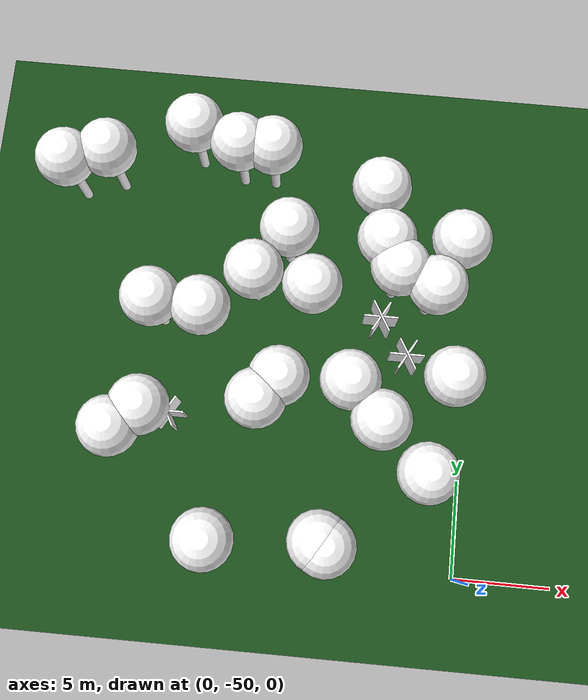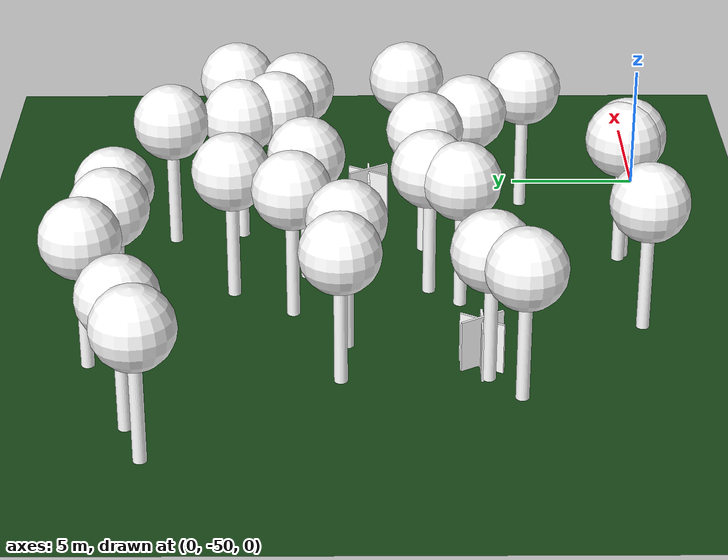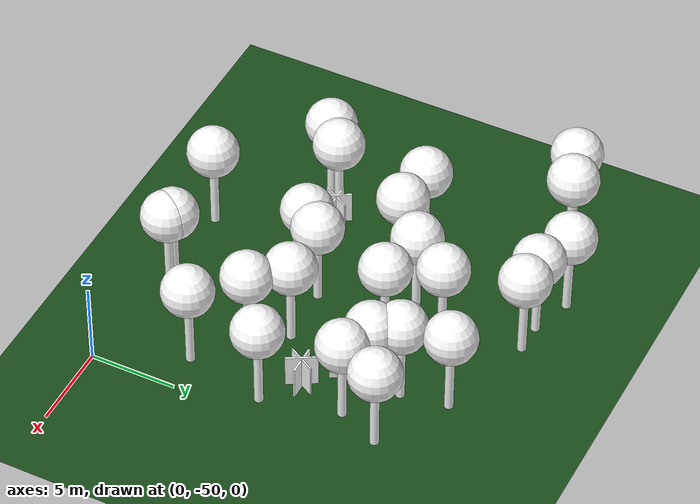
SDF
<sdf version="1.8">
 <world name="forest_world">
  <model name="fire_10">
   <pose>-3.20 -38.87 1.00 0 0 0.00</pose>
   <static>true</static>
   <link name="fire_link">
    <visual name="fire_10_fire_main_0">
     <geometry><box><size>1.80 0.10 2.00</size></box></geometry>
     <material>
      <ambient>0.7 0.35 0.0 1</ambient>
      <diffuse>1 1 1 1</diffuse>
      <specular>0 0 0 1</specular>
      <emissive>0 0 0 1</emissive>
      <pbr>
       <metal><albedo_map>textures/fire.png</albedo_map><metalness>0.0</metalness><roughness>0.6</roughness></metal>
      </pbr>
     </material>
     <transparency>0.0</transparency>
     <cast_shadows>false</cast_shadows>
    </visual>
    <visual name="fire_10_fire_60_1">
     <pose>0.00 0.00 0.10 0 0 1.05</pose>
     <geometry><box><size>1.80 0.10 2.00</size></box></geometry>
     <material>
      <ambient>0.7 0.35 0.0 1</ambient>
      <diffuse>1 1 1 1</diffuse>
      <specular>0 0 0 1</specular>
      <emissive>0 0 0 1</emissive>
      <pbr>
       <metal><albedo_map>textures/fire.png</albedo_map><metalness>0.0</metalness><roughness>0.6</roughness></metal>
      </pbr>
     </material>
     <transparency>0.0</transparency>
     <cast_shadows>false</cast_shadows>
    </visual>
    <visual name="fire_10_fire_120_2">
     <pose>0.00 0.00 0.20 0 0 2.09</pose>
     <geometry><box><size>1.80 0.10 2.00</size></box></geometry>
     <material>
      <ambient>0.7 0.35 0.0 1</ambient>
      <diffuse>1 1 1 1</diffuse>
      <specular>0 0 0 1</specular>
      <emissive>0 0 0 1</emissive>
      <pbr>
       <metal><albedo_map>textures/fire.png</albedo_map><metalness>0.0</metalness><roughness>0.6</roughness></metal>
      </pbr>
     </material>
     <transparency>0.0</transparency>
     <cast_shadows>false</cast_shadows>
    </visual>
    <light type="point" name="fire_10_light_0">
     <pose>0.40 0.00 0.50 0 0 0</pose>
     <diffuse>1.0 0.7 0.3 1</diffuse>
     <specular>1.0 0.8 0.3 1</specular>
     <intensity>2</intensity>
     <attenuation>
      <range>2</range>
      <constant>0.1</constant>
      <linear>0.05</linear>
      <quadratic>0.02</quadratic>
     </attenuation>
     <cast_shadows>false</cast_shadows>
    </light>
    <light type="point" name="fire_10_light_1">
     <pose>-0.20 0.35 0.50 0 0 0</pose>
     <diffuse>1.0 0.7 0.3 1</diffuse>
     <specular>1.0 0.8 0.3 1</specular>
     <intensity>2</intensity>
     <attenuation>
      <range>2</range>
      <constant>0.1</constant>
      <linear>0.05</linear>
      <quadratic>0.02</quadratic>
     </attenuation>
     <cast_shadows>false</cast_shadows>
    </light>
    <light type="point" name="fire_10_light_2">
     <pose>-0.20 -0.35 0.50 0 0 0</pose>
     <diffuse>1.0 0.7 0.3 1</diffuse>
     <specular>1.0 0.8 0.3 1</specular>
     <intensity>2</intensity>
     <attenuation>
      <range>2</range>
      <constant>0.1</constant>
      <linear>0.05</linear>
      <quadratic>0.02</quadratic>
     </attenuation>
     <cast_shadows>false</cast_shadows>
    </light>
   </link>
   <plugin filename="libignition-gazebo-pose-publisher-system.so" name="ignition::gazebo::systems::PosePublisher">
    <frame_id>world</frame_id>
    <publish_link_pose>true</publish_link_pose>
    <use_pose_vector_msg>true</use_pose_vector_msg>
    <static_publisher>true</static_publisher>
    <static_update_frequency>1</static_update_frequency>
   </plugin>
  </model>
  <model name="fire_41">
   <pose>-4.70 -36.98 1.00 0 0 0.00</pose>
   <static>true</static>
   <link name="fire_link">
    <visual name="fire_41_fire_main_0">
     <geometry><box><size>1.80 0.10 2.00</size></box></geometry>
     <material>
      <ambient>0.7 0.35 0.0 1</ambient>
      <diffuse>1 1 1 1</diffuse>
      <specular>0 0 0 1</specular>
      <emissive>0 0 0 1</emissive>
      <pbr>
       <metal><albedo_map>textures/fire.png</albedo_map><metalness>0.0</metalness><roughness>0.6</roughness></metal>
      </pbr>
     </material>
     <transparency>0.0</transparency>
     <cast_shadows>false</cast_shadows>
    </visual>
    <visual name="fire_41_fire_60_1">
     <pose>0.00 0.00 0.10 0 0 1.05</pose>
     <geometry><box><size>1.80 0.10 2.00</size></box></geometry>
     <material>
      <ambient>0.7 0.35 0.0 1</ambient>
      <diffuse>1 1 1 1</diffuse>
      <specular>0 0 0 1</specular>
      <emissive>0 0 0 1</emissive>
      <pbr>
       <metal><albedo_map>textures/fire.png</albedo_map><metalness>0.0</metalness><roughness>0.6</roughness></metal>
      </pbr>
     </material>
     <transparency>0.0</transparency>
     <cast_shadows>false</cast_shadows>
    </visual>
    <visual name="fire_41_fire_120_2">
     <pose>0.00 0.00 0.20 0 0 2.09</pose>
     <geometry><box><size>1.80 0.10 2.00</size></box></geometry>
     <material>
      <ambient>0.7 0.35 0.0 1</ambient>
      <diffuse>1 1 1 1</diffuse>
      <specular>0 0 0 1</specular>
      <emissive>0 0 0 1</emissive>
      <pbr>
       <metal><albedo_map>textures/fire.png</albedo_map><metalness>0.0</metalness><roughness>0.6</roughness></metal>
      </pbr>
     </material>
     <transparency>0.0</transparency>
     <cast_shadows>false</cast_shadows>
    </visual>
    <light type="point" name="fire_41_light_0">
     <pose>0.40 0.00 0.50 0 0 0</pose>
     <diffuse>1.0 0.7 0.3 1</diffuse>
     <specular>1.0 0.8 0.3 1</specular>
     <intensity>2</intensity>
     <attenuation>
      <range>2</range>
      <constant>0.1</constant>
      <linear>0.05</linear>
      <quadratic>0.02</quadratic>
     </attenuation>
     <cast_shadows>false</cast_shadows>
    </light>
    <light type="point" name="fire_41_light_1">
     <pose>-0.20 0.35 0.50 0 0 0</pose>
     <diffuse>1.0 0.7 0.3 1</diffuse>
     <specular>1.0 0.8 0.3 1</specular>
     <intensity>2</intensity>
     <attenuation>
      <range>2</range>
      <constant>0.1</constant>
      <linear>0.05</linear>
      <quadratic>0.02</quadratic>
     </attenuation>
     <cast_shadows>false</cast_shadows>
    </light>
    <light type="point" name="fire_41_light_2">
     <pose>-0.20 -0.35 0.50 0 0 0</pose>
     <diffuse>1.0 0.7 0.3 1</diffuse>
     <specular>1.0 0.8 0.3 1</specular>
     <intensity>2</intensity>
     <attenuation>
      <range>2</range>
      <constant>0.1</constant>
      <linear>0.05</linear>
      <quadratic>0.02</quadratic>
     </attenuation>
     <cast_shadows>false</cast_shadows>
    </light>
   </link>
   <plugin filename="libignition-gazebo-pose-publisher-system.so" name="ignition::gazebo::systems::PosePublisher">
    <frame_id>world</frame_id>
    <publish_link_pose>true</publish_link_pose>
    <use_pose_vector_msg>true</use_pose_vector_msg>
    <static_publisher>true</static_publisher>
    <static_update_frequency>1</static_update_frequency>
   </plugin>
  </model>
  <model name="fire_48">
   <pose>-15.30 -42.92 1.00 0 0 0.00</pose>
   <static>true</static>
   <link name="fire_link">
    <visual name="fire_48_fire_main_0">
     <geometry><box><size>1.80 0.10 2.00</size></box></geometry>
     <material>
      <ambient>0.7 0.35 0.0 1</ambient>
      <diffuse>1 1 1 1</diffuse>
      <specular>0 0 0 1</specular>
      <emissive>0 0 0 1</emissive>
      <pbr>
       <metal><albedo_map>textures/fire.png</albedo_map><metalness>0.0</metalness><roughness>0.6</roughness></metal>
      </pbr>
     </material>
     <transparency>0.0</transparency>
     <cast_shadows>false</cast_shadows>
    </visual>
    <visual name="fire_48_fire_60_1">
     <pose>0.00 0.00 0.10 0 0 1.05</pose>
     <geometry><box><size>1.80 0.10 2.00</size></box></geometry>
     <material>
      <ambient>0.7 0.35 0.0 1</ambient>
      <diffuse>1 1 1 1</diffuse>
      <specular>0 0 0 1</specular>
      <emissive>0 0 0 1</emissive>
      <pbr>
       <metal><albedo_map>textures/fire.png</albedo_map><metalness>0.0</metalness><roughness>0.6</roughness></metal>
      </pbr>
     </material>
     <transparency>0.0</transparency>
     <cast_shadows>false</cast_shadows>
    </visual>
    <visual name="fire_48_fire_120_2">
     <pose>0.00 0.00 0.20 0 0 2.09</pose>
     <geometry><box><size>1.80 0.10 2.00</size></box></geometry>
     <material>
      <ambient>0.7 0.35 0.0 1</ambient>
      <diffuse>1 1 1 1</diffuse>
      <specular>0 0 0 1</specular>
      <emissive>0 0 0 1</emissive>
      <pbr>
       <metal><albedo_map>textures/fire.png</albedo_map><metalness>0.0</metalness><roughness>0.6</roughness></metal>
      </pbr>
     </material>
     <transparency>0.0</transparency>
     <cast_shadows>false</cast_shadows>
    </visual>
    <light type="point" name="fire_48_light_0">
     <pose>0.40 0.00 0.50 0 0 0</pose>
     <diffuse>1.0 0.7 0.3 1</diffuse>
     <specular>1.0 0.8 0.3 1</specular>
     <intensity>2</intensity>
     <attenuation>
      <range>2</range>
      <constant>0.1</constant>
      <linear>0.05</linear>
      <quadratic>0.02</quadratic>
     </attenuation>
     <cast_shadows>false</cast_shadows>
    </light>
    <light type="point" name="fire_48_light_1">
     <pose>-0.20 0.35 0.50 0 0 0</pose>
     <diffuse>1.0 0.7 0.3 1</diffuse>
     <specular>1.0 0.8 0.3 1</specular>
     <intensity>2</intensity>
     <attenuation>
      <range>2</range>
      <constant>0.1</constant>
      <linear>0.05</linear>
      <quadratic>0.02</quadratic>
     </attenuation>
     <cast_shadows>false</cast_shadows>
    </light>
    <light type="point" name="fire_48_light_2">
     <pose>-0.20 -0.35 0.50 0 0 0</pose>
     <diffuse>1.0 0.7 0.3 1</diffuse>
     <specular>1.0 0.8 0.3 1</specular>
     <intensity>2</intensity>
     <attenuation>
      <range>2</range>
      <constant>0.1</constant>
      <linear>0.05</linear>
      <quadratic>0.02</quadratic>
     </attenuation>
     <cast_shadows>false</cast_shadows>
    </light>
   </link>
   <plugin filename="libignition-gazebo-pose-publisher-system.so" name="ignition::gazebo::systems::PosePublisher">
    <frame_id>world</frame_id>
    <publish_link_pose>true</publish_link_pose>
    <use_pose_vector_msg>true</use_pose_vector_msg>
    <static_publisher>true</static_publisher>
    <static_update_frequency>1</static_update_frequency>
   </plugin>
  </model>
  <model name="tree_simple491">
   <static>1</static>
   <link name="link">
    <pose>0 0 0.1 0 -0 0</pose>
    <collision name="collision_trunk">
     <pose>0 0 2 0 -0 0</pose>
     <geometry><cylinder><radius>0.25</radius><length>4</length></cylinder></geometry>
    </collision>
    <collision name="collision_treetop">
     <pose>0 0 5.2 0 -0 0</pose>
     <geometry><sphere><radius>1.5</radius></sphere></geometry>
    </collision>
    <visual name="trunk">
     <pose>0 0 2 0 -0 0</pose>
     <geometry><cylinder><radius>0.25</radius><length>4</length></cylinder></geometry>
     <material>
      <ambient>0.5 0.5 0.5 1</ambient>
      <diffuse>1.0 1.0 1.0 1</diffuse>
      <specular>0.0 0.0 0.0 1</specular>
      <pbr>
       <metal>
        <albedo_map>../worlds/textures/tree_simple_trunk.jpg</albedo_map>
        <metalness>0.0</metalness>
        <roughness>0.8</roughness>
       </metal>
      </pbr>
     </material>
    </visual>
    <visual name="treetop">
     <pose>0 0 5.2 0 -0 0</pose>
     <geometry><sphere><radius>1.5</radius></sphere></geometry>
     <material>
      <ambient>0.5 0.5 0.5 1</ambient>
      <diffuse>1.0 1.0 1.0 1</diffuse>
      <specular>0.0 0.0 0.0 1</specular>
      <pbr>
       <metal>
        <albedo_map>../worlds/textures/tree_simple_treetop.jpg</albedo_map>
        <metalness>0.0</metalness>
        <roughness>0.9</roughness>
       </metal>
      </pbr>
     </material>
    </visual>
   </link>
   <pose>-12.3902503735 -49.1082665042 0 0 -0 0</pose>
  </model>
  <model name="tree_simple454">
   <static>1</static>
   <link name="link">
    <pose>0 0 0.1 0 -0 0</pose>
    <collision name="collision_trunk">
     <pose>0 0 2 0 -0 0</pose>
     <geometry><cylinder><radius>0.25</radius><length>4</length></cylinder></geometry>
    </collision>
    <collision name="collision_treetop">
     <pose>0 0 5.2 0 -0 0</pose>
     <geometry><sphere><radius>1.5</radius></sphere></geometry>
    </collision>
    <visual name="trunk">
     <pose>0 0 2 0 -0 0</pose>
     <geometry><cylinder><radius>0.25</radius><length>4</length></cylinder></geometry>
     <material>
      <ambient>0.5 0.5 0.5 1</ambient>
      <diffuse>1.0 1.0 1.0 1</diffuse>
      <specular>0.0 0.0 0.0 1</specular>
      <pbr>
       <metal>
        <albedo_map>../worlds/textures/tree_simple_trunk.jpg</albedo_map>
        <metalness>0.0</metalness>
        <roughness>0.8</roughness>
       </metal>
      </pbr>
     </material>
    </visual>
    <visual name="treetop">
     <pose>0 0 5.2 0 -0 0</pose>
     <geometry><sphere><radius>1.5</radius></sphere></geometry>
     <material>
      <ambient>0.5 0.5 0.5 1</ambient>
      <diffuse>1.0 1.0 1.0 1</diffuse>
      <specular>0.0 0.0 0.0 1</specular>
      <pbr>
       <metal>
        <albedo_map>../worlds/textures/tree_simple_treetop.jpg</albedo_map>
        <metalness>0.0</metalness>
        <roughness>0.9</roughness>
       </metal>
      </pbr>
     </material>
    </visual>
   </link>
   <pose>-1.19781681146 -40.4261160925 0 0 -0 0</pose>
  </model>
  <model name="tree_simple447">
   <static>1</static>
   <link name="link">
    <pose>0 0 0.1 0 -0 0</pose>
    <collision name="collision_trunk">
     <pose>0 0 2 0 -0 0</pose>
     <geometry><cylinder><radius>0.25</radius><length>4</length></cylinder></geometry>
    </collision>
    <collision name="collision_treetop">
     <pose>0 0 5.2 0 -0 0</pose>
     <geometry><sphere><radius>1.5</radius></sphere></geometry>
    </collision>
    <visual name="trunk">
     <pose>0 0 2 0 -0 0</pose>
     <geometry><cylinder><radius>0.25</radius><length>4</length></cylinder></geometry>
     <material>
      <ambient>0.5 0.5 0.5 1</ambient>
      <diffuse>1.0 1.0 1.0 1</diffuse>
      <specular>0.0 0.0 0.0 1</specular>
      <pbr>
       <metal>
        <albedo_map>../worlds/textures/tree_simple_trunk.jpg</albedo_map>
        <metalness>0.0</metalness>
        <roughness>0.8</roughness>
       </metal>
      </pbr>
     </material>
    </visual>
    <visual name="treetop">
     <pose>0 0 5.2 0 -0 0</pose>
     <geometry><sphere><radius>1.5</radius></sphere></geometry>
     <material>
      <ambient>0.5 0.5 0.5 1</ambient>
      <diffuse>1.0 1.0 1.0 1</diffuse>
      <specular>0.0 0.0 0.0 1</specular>
      <pbr>
       <metal>
        <albedo_map>../worlds/textures/tree_simple_treetop.jpg</albedo_map>
        <metalness>0.0</metalness>
        <roughness>0.9</roughness>
       </metal>
      </pbr>
     </material>
    </visual>
   </link>
   <pose>-6.1509747219 -41.0422803315 0 0 -0 0</pose>
  </model>
  <model name="tree_simple408">
   <static>1</static>
   <link name="link">
    <pose>0 0 0.1 0 -0 0</pose>
    <collision name="collision_trunk">
     <pose>0 0 2 0 -0 0</pose>
     <geometry><cylinder><radius>0.25</radius><length>4</length></cylinder></geometry>
    </collision>
    <collision name="collision_treetop">
     <pose>0 0 5.2 0 -0 0</pose>
     <geometry><sphere><radius>1.5</radius></sphere></geometry>
    </collision>
    <visual name="trunk">
     <pose>0 0 2 0 -0 0</pose>
     <geometry><cylinder><radius>0.25</radius><length>4</length></cylinder></geometry>
     <material>
      <ambient>0.5 0.5 0.5 1</ambient>
      <diffuse>1.0 1.0 1.0 1</diffuse>
      <specular>0.0 0.0 0.0 1</specular>
      <pbr>
       <metal>
        <albedo_map>../worlds/textures/tree_simple_trunk.jpg</albedo_map>
        <metalness>0.0</metalness>
        <roughness>0.8</roughness>
       </metal>
      </pbr>
     </material>
    </visual>
    <visual name="treetop">
     <pose>0 0 5.2 0 -0 0</pose>
     <geometry><sphere><radius>1.5</radius></sphere></geometry>
     <material>
      <ambient>0.5 0.5 0.5 1</ambient>
      <diffuse>1.0 1.0 1.0 1</diffuse>
      <specular>0.0 0.0 0.0 1</specular>
      <pbr>
       <metal>
        <albedo_map>../worlds/textures/tree_simple_treetop.jpg</albedo_map>
        <metalness>0.0</metalness>
        <roughness>0.9</roughness>
       </metal>
      </pbr>
     </material>
    </visual>
   </link>
   <pose>-16.0994347695 -43.1531583175 0 0 -0 0</pose>
  </model>
  <model name="tree_simple397">
   <static>1</static>
   <link name="link">
    <pose>0 0 0.1 0 -0 0</pose>
    <collision name="collision_trunk">
     <pose>0 0 2 0 -0 0</pose>
     <geometry><cylinder><radius>0.25</radius><length>4</length></cylinder></geometry>
    </collision>
    <collision name="collision_treetop">
     <pose>0 0 5.2 0 -0 0</pose>
     <geometry><sphere><radius>1.5</radius></sphere></geometry>
    </collision>
    <visual name="trunk">
     <pose>0 0 2 0 -0 0</pose>
     <geometry><cylinder><radius>0.25</radius><length>4</length></cylinder></geometry>
     <material>
      <ambient>0.5 0.5 0.5 1</ambient>
      <diffuse>1.0 1.0 1.0 1</diffuse>
      <specular>0.0 0.0 0.0 1</specular>
      <pbr>
       <metal>
        <albedo_map>../worlds/textures/tree_simple_trunk.jpg</albedo_map>
        <metalness>0.0</metalness>
        <roughness>0.8</roughness>
       </metal>
      </pbr>
     </material>
    </visual>
    <visual name="treetop">
     <pose>0 0 5.2 0 -0 0</pose>
     <geometry><sphere><radius>1.5</radius></sphere></geometry>
     <material>
      <ambient>0.5 0.5 0.5 1</ambient>
      <diffuse>1.0 1.0 1.0 1</diffuse>
      <specular>0.0 0.0 0.0 1</specular>
      <pbr>
       <metal>
        <albedo_map>../worlds/textures/tree_simple_treetop.jpg</albedo_map>
        <metalness>0.0</metalness>
        <roughness>0.9</roughness>
       </metal>
      </pbr>
     </material>
    </visual>
   </link>
   <pose>-11.3370979395 -35.9987020926 0 0 -0 0</pose>
  </model>
  <model name="tree_simple382">
   <static>1</static>
   <link name="link">
    <pose>0 0 0.1 0 -0 0</pose>
    <collision name="collision_trunk">
     <pose>0 0 2 0 -0 0</pose>
     <geometry><cylinder><radius>0.25</radius><length>4</length></cylinder></geometry>
    </collision>
    <collision name="collision_treetop">
     <pose>0 0 5.2 0 -0 0</pose>
     <geometry><sphere><radius>1.5</radius></sphere></geometry>
    </collision>
    <visual name="trunk">
     <pose>0 0 2 0 -0 0</pose>
     <geometry><cylinder><radius>0.25</radius><length>4</length></cylinder></geometry>
     <material>
      <ambient>0.5 0.5 0.5 1</ambient>
      <diffuse>1.0 1.0 1.0 1</diffuse>
      <specular>0.0 0.0 0.0 1</specular>
      <pbr>
       <metal>
        <albedo_map>../worlds/textures/tree_simple_trunk.jpg</albedo_map>
        <metalness>0.0</metalness>
        <roughness>0.8</roughness>
       </metal>
      </pbr>
     </material>
    </visual>
    <visual name="treetop">
     <pose>0 0 5.2 0 -0 0</pose>
     <geometry><sphere><radius>1.5</radius></sphere></geometry>
     <material>
      <ambient>0.5 0.5 0.5 1</ambient>
      <diffuse>1.0 1.0 1.0 1</diffuse>
      <specular>0.0 0.0 0.0 1</specular>
      <pbr>
       <metal>
        <albedo_map>../worlds/textures/tree_simple_treetop.jpg</albedo_map>
        <metalness>0.0</metalness>
        <roughness>0.9</roughness>
       </metal>
      </pbr>
     </material>
    </visual>
   </link>
   <pose>-13.7339502639 -38.0385425652 0 0 -0 0</pose>
  </model>
  <model name="tree_simple371">
   <static>1</static>
   <link name="link">
    <pose>0 0 0.1 0 -0 0</pose>
    <collision name="collision_trunk">
     <pose>0 0 2 0 -0 0</pose>
     <geometry><cylinder><radius>0.25</radius><length>4</length></cylinder></geometry>
    </collision>
    <collision name="collision_treetop">
     <pose>0 0 5.2 0 -0 0</pose>
     <geometry><sphere><radius>1.5</radius></sphere></geometry>
    </collision>
    <visual name="trunk">
     <pose>0 0 2 0 -0 0</pose>
     <geometry><cylinder><radius>0.25</radius><length>4</length></cylinder></geometry>
     <material>
      <ambient>0.5 0.5 0.5 1</ambient>
      <diffuse>1.0 1.0 1.0 1</diffuse>
      <specular>0.0 0.0 0.0 1</specular>
      <pbr>
       <metal>
        <albedo_map>../worlds/textures/tree_simple_trunk.jpg</albedo_map>
        <metalness>0.0</metalness>
        <roughness>0.8</roughness>
       </metal>
      </pbr>
     </material>
    </visual>
    <visual name="treetop">
     <pose>0 0 5.2 0 -0 0</pose>
     <geometry><sphere><radius>1.5</radius></sphere></geometry>
     <material>
      <ambient>0.5 0.5 0.5 1</ambient>
      <diffuse>1.0 1.0 1.0 1</diffuse>
      <specular>0.0 0.0 0.0 1</specular>
      <pbr>
       <metal>
        <albedo_map>../worlds/textures/tree_simple_treetop.jpg</albedo_map>
        <metalness>0.0</metalness>
        <roughness>0.9</roughness>
       </metal>
      </pbr>
     </material>
    </visual>
   </link>
   <pose>-15.0952400949 -28.608477139 0 0 -0 0</pose>
  </model>
  <model name="tree_simple368">
   <static>1</static>
   <link name="link">
    <pose>0 0 0.1 0 -0 0</pose>
    <collision name="collision_trunk">
     <pose>0 0 2 0 -0 0</pose>
     <geometry><cylinder><radius>0.25</radius><length>4</length></cylinder></geometry>
    </collision>
    <collision name="collision_treetop">
     <pose>0 0 5.2 0 -0 0</pose>
     <geometry><sphere><radius>1.5</radius></sphere></geometry>
    </collision>
    <visual name="trunk">
     <pose>0 0 2 0 -0 0</pose>
     <geometry><cylinder><radius>0.25</radius><length>4</length></cylinder></geometry>
     <material>
      <ambient>0.5 0.5 0.5 1</ambient>
      <diffuse>1.0 1.0 1.0 1</diffuse>
      <specular>0.0 0.0 0.0 1</specular>
      <pbr>
       <metal>
        <albedo_map>../worlds/textures/tree_simple_trunk.jpg</albedo_map>
        <metalness>0.0</metalness>
        <roughness>0.8</roughness>
       </metal>
      </pbr>
     </material>
    </visual>
    <visual name="treetop">
     <pose>0 0 5.2 0 -0 0</pose>
     <geometry><sphere><radius>1.5</radius></sphere></geometry>
     <material>
      <ambient>0.5 0.5 0.5 1</ambient>
      <diffuse>1.0 1.0 1.0 1</diffuse>
      <specular>0.0 0.0 0.0 1</specular>
      <pbr>
       <metal>
        <albedo_map>../worlds/textures/tree_simple_treetop.jpg</albedo_map>
        <metalness>0.0</metalness>
        <roughness>0.9</roughness>
       </metal>
      </pbr>
     </material>
    </visual>
   </link>
   <pose>-2.27490769551 -35.975306792 0 0 -0 0</pose>
  </model>
  <model name="tree_simple334">
   <static>1</static>
   <link name="link">
    <pose>0 0 0.1 0 -0 0</pose>
    <collision name="collision_trunk">
     <pose>0 0 2 0 -0 0</pose>
     <geometry><cylinder><radius>0.25</radius><length>4</length></cylinder></geometry>
    </collision>
    <collision name="collision_treetop">
     <pose>0 0 5.2 0 -0 0</pose>
     <geometry><sphere><radius>1.5</radius></sphere></geometry>
    </collision>
    <visual name="trunk">
     <pose>0 0 2 0 -0 0</pose>
     <geometry><cylinder><radius>0.25</radius><length>4</length></cylinder></geometry>
     <material>
      <ambient>0.5 0.5 0.5 1</ambient>
      <diffuse>1.0 1.0 1.0 1</diffuse>
      <specular>0.0 0.0 0.0 1</specular>
      <pbr>
       <metal>
        <albedo_map>../worlds/textures/tree_simple_trunk.jpg</albedo_map>
        <metalness>0.0</metalness>
        <roughness>0.8</roughness>
       </metal>
      </pbr>
     </material>
    </visual>
    <visual name="treetop">
     <pose>0 0 5.2 0 -0 0</pose>
     <geometry><sphere><radius>1.5</radius></sphere></geometry>
     <material>
      <ambient>0.5 0.5 0.5 1</ambient>
      <diffuse>1.0 1.0 1.0 1</diffuse>
      <specular>0.0 0.0 0.0 1</specular>
      <pbr>
       <metal>
        <albedo_map>../worlds/textures/tree_simple_treetop.jpg</albedo_map>
        <metalness>0.0</metalness>
        <roughness>0.9</roughness>
       </metal>
      </pbr>
     </material>
    </visual>
   </link>
   <pose>-4.1581298625 -35.2035688942 0 0 -0 0</pose>
  </model>
  <model name="tree_simple305">
   <static>1</static>
   <link name="link">
    <pose>0 0 0.1 0 -0 0</pose>
    <collision name="collision_trunk">
     <pose>0 0 2 0 -0 0</pose>
     <geometry><cylinder><radius>0.25</radius><length>4</length></cylinder></geometry>
    </collision>
    <collision name="collision_treetop">
     <pose>0 0 5.2 0 -0 0</pose>
     <geometry><sphere><radius>1.5</radius></sphere></geometry>
    </collision>
    <visual name="trunk">
     <pose>0 0 2 0 -0 0</pose>
     <geometry><cylinder><radius>0.25</radius><length>4</length></cylinder></geometry>
     <material>
      <ambient>0.5 0.5 0.5 1</ambient>
      <diffuse>1.0 1.0 1.0 1</diffuse>
      <specular>0.0 0.0 0.0 1</specular>
      <pbr>
       <metal>
        <albedo_map>../worlds/textures/tree_simple_trunk.jpg</albedo_map>
        <metalness>0.0</metalness>
        <roughness>0.8</roughness>
       </metal>
      </pbr>
     </material>
    </visual>
    <visual name="treetop">
     <pose>0 0 5.2 0 -0 0</pose>
     <geometry><sphere><radius>1.5</radius></sphere></geometry>
     <material>
      <ambient>0.5 0.5 0.5 1</ambient>
      <diffuse>1.0 1.0 1.0 1</diffuse>
      <specular>0.0 0.0 0.0 1</specular>
      <pbr>
       <metal>
        <albedo_map>../worlds/textures/tree_simple_treetop.jpg</albedo_map>
        <metalness>0.0</metalness>
        <roughness>0.9</roughness>
       </metal>
      </pbr>
     </material>
    </visual>
   </link>
   <pose>-16.2250054706 -37.82270562 0 0 -0 0</pose>
  </model>
  <model name="tree_simple257">
   <static>1</static>
   <link name="link">
    <pose>0 0 0.1 0 -0 0</pose>
    <collision name="collision_trunk">
     <pose>0 0 2 0 -0 0</pose>
     <geometry><cylinder><radius>0.25</radius><length>4</length></cylinder></geometry>
    </collision>
    <collision name="collision_treetop">
     <pose>0 0 5.2 0 -0 0</pose>
     <geometry><sphere><radius>1.5</radius></sphere></geometry>
    </collision>
    <visual name="trunk">
     <pose>0 0 2 0 -0 0</pose>
     <geometry><cylinder><radius>0.25</radius><length>4</length></cylinder></geometry>
     <material>
      <ambient>0.5 0.5 0.5 1</ambient>
      <diffuse>1.0 1.0 1.0 1</diffuse>
      <specular>0.0 0.0 0.0 1</specular>
      <pbr>
       <metal>
        <albedo_map>../worlds/textures/tree_simple_trunk.jpg</albedo_map>
        <metalness>0.0</metalness>
        <roughness>0.8</roughness>
       </metal>
      </pbr>
     </material>
    </visual>
    <visual name="treetop">
     <pose>0 0 5.2 0 -0 0</pose>
     <geometry><sphere><radius>1.5</radius></sphere></geometry>
     <material>
      <ambient>0.5 0.5 0.5 1</ambient>
      <diffuse>1.0 1.0 1.0 1</diffuse>
      <specular>0.0 0.0 0.0 1</specular>
      <pbr>
       <metal>
        <albedo_map>../worlds/textures/tree_simple_treetop.jpg</albedo_map>
        <metalness>0.0</metalness>
        <roughness>0.9</roughness>
       </metal>
      </pbr>
     </material>
    </visual>
   </link>
   <pose>-17.4076670765 -44.276485645 0 0 -0 0</pose>
  </model>
  <model name="tree_simple227">
   <static>1</static>
   <link name="link">
    <pose>0 0 0.1 0 -0 0</pose>
    <collision name="collision_trunk">
     <pose>0 0 2 0 -0 0</pose>
     <geometry><cylinder><radius>0.25</radius><length>4</length></cylinder></geometry>
    </collision>
    <collision name="collision_treetop">
     <pose>0 0 5.2 0 -0 0</pose>
     <geometry><sphere><radius>1.5</radius></sphere></geometry>
    </collision>
    <visual name="trunk">
     <pose>0 0 2 0 -0 0</pose>
     <geometry><cylinder><radius>0.25</radius><length>4</length></cylinder></geometry>
     <material>
      <ambient>0.5 0.5 0.5 1</ambient>
      <diffuse>1.0 1.0 1.0 1</diffuse>
      <specular>0.0 0.0 0.0 1</specular>
      <pbr>
       <metal>
        <albedo_map>../worlds/textures/tree_simple_trunk.jpg</albedo_map>
        <metalness>0.0</metalness>
        <roughness>0.8</roughness>
       </metal>
      </pbr>
     </material>
    </visual>
    <visual name="treetop">
     <pose>0 0 5.2 0 -0 0</pose>
     <geometry><sphere><radius>1.5</radius></sphere></geometry>
     <material>
      <ambient>0.5 0.5 0.5 1</ambient>
      <diffuse>1.0 1.0 1.0 1</diffuse>
      <specular>0.0 0.0 0.0 1</specular>
      <pbr>
       <metal>
        <albedo_map>../worlds/textures/tree_simple_treetop.jpg</albedo_map>
        <metalness>0.0</metalness>
        <roughness>0.9</roughness>
       </metal>
      </pbr>
     </material>
    </visual>
   </link>
   <pose>-10.5932066879 -42.3249701995 0 0 -0 0</pose>
  </model>
  <model name="tree_simple166">
   <static>1</static>
   <link name="link">
    <pose>0 0 0.1 0 -0 0</pose>
    <collision name="collision_trunk">
     <pose>0 0 2 0 -0 0</pose>
     <geometry><cylinder><radius>0.25</radius><length>4</length></cylinder></geometry>
    </collision>
    <collision name="collision_treetop">
     <pose>0 0 5.2 0 -0 0</pose>
     <geometry><sphere><radius>1.5</radius></sphere></geometry>
    </collision>
    <visual name="trunk">
     <pose>0 0 2 0 -0 0</pose>
     <geometry><cylinder><radius>0.25</radius><length>4</length></cylinder></geometry>
     <material>
      <ambient>0.5 0.5 0.5 1</ambient>
      <diffuse>1.0 1.0 1.0 1</diffuse>
      <specular>0.0 0.0 0.0 1</specular>
      <pbr>
       <metal>
        <albedo_map>../worlds/textures/tree_simple_trunk.jpg</albedo_map>
        <metalness>0.0</metalness>
        <roughness>0.8</roughness>
       </metal>
      </pbr>
     </material>
    </visual>
    <visual name="treetop">
     <pose>0 0 5.2 0 -0 0</pose>
     <geometry><sphere><radius>1.5</radius></sphere></geometry>
     <material>
      <ambient>0.5 0.5 0.5 1</ambient>
      <diffuse>1.0 1.0 1.0 1</diffuse>
      <specular>0.0 0.0 0.0 1</specular>
      <pbr>
       <metal>
        <albedo_map>../worlds/textures/tree_simple_treetop.jpg</albedo_map>
        <metalness>0.0</metalness>
        <roughness>0.9</roughness>
       </metal>
      </pbr>
     </material>
    </visual>
   </link>
   <pose>-19.3381588268 -30.3399867983 0 0 -0 0</pose>
  </model>
  <model name="tree_simple152">
   <static>1</static>
   <link name="link">
    <pose>0 0 0.1 0 -0 0</pose>
    <collision name="collision_trunk">
     <pose>0 0 2 0 -0 0</pose>
     <geometry><cylinder><radius>0.25</radius><length>4</length></cylinder></geometry>
    </collision>
    <collision name="collision_treetop">
     <pose>0 0 5.2 0 -0 0</pose>
     <geometry><sphere><radius>1.5</radius></sphere></geometry>
    </collision>
    <visual name="trunk">
     <pose>0 0 2 0 -0 0</pose>
     <geometry><cylinder><radius>0.25</radius><length>4</length></cylinder></geometry>
     <material>
      <ambient>0.5 0.5 0.5 1</ambient>
      <diffuse>1.0 1.0 1.0 1</diffuse>
      <specular>0.0 0.0 0.0 1</specular>
      <pbr>
       <metal>
        <albedo_map>../worlds/textures/tree_simple_trunk.jpg</albedo_map>
        <metalness>0.0</metalness>
        <roughness>0.8</roughness>
       </metal>
      </pbr>
     </material>
    </visual>
    <visual name="treetop">
     <pose>0 0 5.2 0 -0 0</pose>
     <geometry><sphere><radius>1.5</radius></sphere></geometry>
     <material>
      <ambient>0.5 0.5 0.5 1</ambient>
      <diffuse>1.0 1.0 1.0 1</diffuse>
      <specular>0.0 0.0 0.0 1</specular>
      <pbr>
       <metal>
        <albedo_map>../worlds/textures/tree_simple_treetop.jpg</albedo_map>
        <metalness>0.0</metalness>
        <roughness>0.9</roughness>
       </metal>
      </pbr>
     </material>
    </visual>
   </link>
   <pose>-12.7268570034 -29.4125065477 0 0 -0 0</pose>
  </model>
  <model name="tree_simple143">
   <static>1</static>
   <link name="link">
    <pose>0 0 0.1 0 -0 0</pose>
    <collision name="collision_trunk">
     <pose>0 0 2 0 -0 0</pose>
     <geometry><cylinder><radius>0.25</radius><length>4</length></cylinder></geometry>
    </collision>
    <collision name="collision_treetop">
     <pose>0 0 5.2 0 -0 0</pose>
     <geometry><sphere><radius>1.5</radius></sphere></geometry>
    </collision>
    <visual name="trunk">
     <pose>0 0 2 0 -0 0</pose>
     <geometry><cylinder><radius>0.25</radius><length>4</length></cylinder></geometry>
     <material>
      <ambient>0.5 0.5 0.5 1</ambient>
      <diffuse>1.0 1.0 1.0 1</diffuse>
      <specular>0.0 0.0 0.0 1</specular>
      <pbr>
       <metal>
        <albedo_map>../worlds/textures/tree_simple_trunk.jpg</albedo_map>
        <metalness>0.0</metalness>
        <roughness>0.8</roughness>
       </metal>
      </pbr>
     </material>
    </visual>
    <visual name="treetop">
     <pose>0 0 5.2 0 -0 0</pose>
     <geometry><sphere><radius>1.5</radius></sphere></geometry>
     <material>
      <ambient>0.5 0.5 0.5 1</ambient>
      <diffuse>1.0 1.0 1.0 1</diffuse>
      <specular>0.0 0.0 0.0 1</specular>
      <pbr>
       <metal>
        <albedo_map>../worlds/textures/tree_simple_treetop.jpg</albedo_map>
        <metalness>0.0</metalness>
        <roughness>0.9</roughness>
       </metal>
      </pbr>
     </material>
    </visual>
   </link>
   <pose>-9.58958340045 -41.1660757416 0 0 -0 0</pose>
  </model>
  <model name="tree_simple126">
   <static>1</static>
   <link name="link">
    <pose>0 0 0.1 0 -0 0</pose>
    <collision name="collision_trunk">
     <pose>0 0 2 0 -0 0</pose>
     <geometry><cylinder><radius>0.25</radius><length>4</length></cylinder></geometry>
    </collision>
    <collision name="collision_treetop">
     <pose>0 0 5.2 0 -0 0</pose>
     <geometry><sphere><radius>1.5</radius></sphere></geometry>
    </collision>
    <visual name="trunk">
     <pose>0 0 2 0 -0 0</pose>
     <geometry><cylinder><radius>0.25</radius><length>4</length></cylinder></geometry>
     <material>
      <ambient>0.5 0.5 0.5 1</ambient>
      <diffuse>1.0 1.0 1.0 1</diffuse>
      <specular>0.0 0.0 0.0 1</specular>
      <pbr>
       <metal>
        <albedo_map>../worlds/textures/tree_simple_trunk.jpg</albedo_map>
        <metalness>0.0</metalness>
        <roughness>0.8</roughness>
       </metal>
      </pbr>
     </material>
    </visual>
    <visual name="treetop">
     <pose>0 0 5.2 0 -0 0</pose>
     <geometry><sphere><radius>1.5</radius></sphere></geometry>
     <material>
      <ambient>0.5 0.5 0.5 1</ambient>
      <diffuse>1.0 1.0 1.0 1</diffuse>
      <specular>0.0 0.0 0.0 1</specular>
      <pbr>
       <metal>
        <albedo_map>../worlds/textures/tree_simple_treetop.jpg</albedo_map>
        <metalness>0.0</metalness>
        <roughness>0.9</roughness>
       </metal>
      </pbr>
     </material>
    </visual>
   </link>
   <pose>-8.40128153864 -36.4846341971 0 0 -0 0</pose>
  </model>
  <model name="tree_simple114">
   <static>1</static>
   <link name="link">
    <pose>0 0 0.1 0 -0 0</pose>
    <collision name="collision_trunk">
     <pose>0 0 2 0 -0 0</pose>
     <geometry><cylinder><radius>0.25</radius><length>4</length></cylinder></geometry>
    </collision>
    <collision name="collision_treetop">
     <pose>0 0 5.2 0 -0 0</pose>
     <geometry><sphere><radius>1.5</radius></sphere></geometry>
    </collision>
    <visual name="trunk">
     <pose>0 0 2 0 -0 0</pose>
     <geometry><cylinder><radius>0.25</radius><length>4</length></cylinder></geometry>
     <material>
      <ambient>0.5 0.5 0.5 1</ambient>
      <diffuse>1.0 1.0 1.0 1</diffuse>
      <specular>0.0 0.0 0.0 1</specular>
      <pbr>
       <metal>
        <albedo_map>../worlds/textures/tree_simple_trunk.jpg</albedo_map>
        <metalness>0.0</metalness>
        <roughness>0.8</roughness>
       </metal>
      </pbr>
     </material>
    </visual>
    <visual name="treetop">
     <pose>0 0 5.2 0 -0 0</pose>
     <geometry><sphere><radius>1.5</radius></sphere></geometry>
     <material>
      <ambient>0.5 0.5 0.5 1</ambient>
      <diffuse>1.0 1.0 1.0 1</diffuse>
      <specular>0.0 0.0 0.0 1</specular>
      <pbr>
       <metal>
        <albedo_map>../worlds/textures/tree_simple_treetop.jpg</albedo_map>
        <metalness>0.0</metalness>
        <roughness>0.9</roughness>
       </metal>
      </pbr>
     </material>
    </visual>
   </link>
   <pose>-2.17757547104 -45.1286714355 0 0 -0 0</pose>
  </model>
  <model name="tree_simple107">
   <static>1</static>
   <link name="link">
    <pose>0 0 0.1 0 -0 0</pose>
    <collision name="collision_trunk">
     <pose>0 0 2 0 -0 0</pose>
     <geometry><cylinder><radius>0.25</radius><length>4</length></cylinder></geometry>
    </collision>
    <collision name="collision_treetop">
     <pose>0 0 5.2 0 -0 0</pose>
     <geometry><sphere><radius>1.5</radius></sphere></geometry>
    </collision>
    <visual name="trunk">
     <pose>0 0 2 0 -0 0</pose>
     <geometry><cylinder><radius>0.25</radius><length>4</length></cylinder></geometry>
     <material>
      <ambient>0.5 0.5 0.5 1</ambient>
      <diffuse>1.0 1.0 1.0 1</diffuse>
      <specular>0.0 0.0 0.0 1</specular>
      <pbr>
       <metal>
        <albedo_map>../worlds/textures/tree_simple_trunk.jpg</albedo_map>
        <metalness>0.0</metalness>
        <roughness>0.8</roughness>
       </metal>
      </pbr>
     </material>
    </visual>
    <visual name="treetop">
     <pose>0 0 5.2 0 -0 0</pose>
     <geometry><sphere><radius>1.5</radius></sphere></geometry>
     <material>
      <ambient>0.5 0.5 0.5 1</ambient>
      <diffuse>1.0 1.0 1.0 1</diffuse>
      <specular>0.0 0.0 0.0 1</specular>
      <pbr>
       <metal>
        <albedo_map>../worlds/textures/tree_simple_treetop.jpg</albedo_map>
        <metalness>0.0</metalness>
        <roughness>0.9</roughness>
       </metal>
      </pbr>
     </material>
    </visual>
   </link>
   <pose>-1.23057164025 -33.5425651467 0 0 -0 0</pose>
  </model>
  <model name="tree_simple102">
   <static>1</static>
   <link name="link">
    <pose>0 0 0.1 0 -0 0</pose>
    <collision name="collision_trunk">
     <pose>0 0 2 0 -0 0</pose>
     <geometry><cylinder><radius>0.25</radius><length>4</length></cylinder></geometry>
    </collision>
    <collision name="collision_treetop">
     <pose>0 0 5.2 0 -0 0</pose>
     <geometry><sphere><radius>1.5</radius></sphere></geometry>
    </collision>
    <visual name="trunk">
     <pose>0 0 2 0 -0 0</pose>
     <geometry><cylinder><radius>0.25</radius><length>4</length></cylinder></geometry>
     <material>
      <ambient>0.5 0.5 0.5 1</ambient>
      <diffuse>1.0 1.0 1.0 1</diffuse>
      <specular>0.0 0.0 0.0 1</specular>
      <pbr>
       <metal>
        <albedo_map>../worlds/textures/tree_simple_trunk.jpg</albedo_map>
        <metalness>0.0</metalness>
        <roughness>0.8</roughness>
       </metal>
      </pbr>
     </material>
    </visual>
    <visual name="treetop">
     <pose>0 0 5.2 0 -0 0</pose>
     <geometry><sphere><radius>1.5</radius></sphere></geometry>
     <material>
      <ambient>0.5 0.5 0.5 1</ambient>
      <diffuse>1.0 1.0 1.0 1</diffuse>
      <specular>0.0 0.0 0.0 1</specular>
      <pbr>
       <metal>
        <albedo_map>../worlds/textures/tree_simple_treetop.jpg</albedo_map>
        <metalness>0.0</metalness>
        <roughness>0.9</roughness>
       </metal>
      </pbr>
     </material>
    </visual>
   </link>
   <pose>-9.77870020383 -33.6944059178 0 0 -0 0</pose>
  </model>
  <model name="tree_simple90">
   <static>1</static>
   <link name="link">
    <pose>0 0 0.1 0 -0 0</pose>
    <collision name="collision_trunk">
     <pose>0 0 2 0 -0 0</pose>
     <geometry><cylinder><radius>0.25</radius><length>4</length></cylinder></geometry>
    </collision>
    <collision name="collision_treetop">
     <pose>0 0 5.2 0 -0 0</pose>
     <geometry><sphere><radius>1.5</radius></sphere></geometry>
    </collision>
    <visual name="trunk">
     <pose>0 0 2 0 -0 0</pose>
     <geometry><cylinder><radius>0.25</radius><length>4</length></cylinder></geometry>
     <material>
      <ambient>0.5 0.5 0.5 1</ambient>
      <diffuse>1.0 1.0 1.0 1</diffuse>
      <specular>0.0 0.0 0.0 1</specular>
      <pbr>
       <metal>
        <albedo_map>../worlds/textures/tree_simple_trunk.jpg</albedo_map>
        <metalness>0.0</metalness>
        <roughness>0.8</roughness>
       </metal>
      </pbr>
     </material>
    </visual>
    <visual name="treetop">
     <pose>0 0 5.2 0 -0 0</pose>
     <geometry><sphere><radius>1.5</radius></sphere></geometry>
     <material>
      <ambient>0.5 0.5 0.5 1</ambient>
      <diffuse>1.0 1.0 1.0 1</diffuse>
      <specular>0.0 0.0 0.0 1</specular>
      <pbr>
       <metal>
        <albedo_map>../worlds/textures/tree_simple_treetop.jpg</albedo_map>
        <metalness>0.0</metalness>
        <roughness>0.9</roughness>
       </metal>
      </pbr>
     </material>
    </visual>
   </link>
   <pose>-7.02064767481 -48.7132309456 0 0 -0 0</pose>
  </model>
  <model name="tree_simple58">
   <static>1</static>
   <link name="link">
    <pose>0 0 0.1 0 -0 0</pose>
    <collision name="collision_trunk">
     <pose>0 0 2 0 -0 0</pose>
     <geometry><cylinder><radius>0.25</radius><length>4</length></cylinder></geometry>
    </collision>
    <collision name="collision_treetop">
     <pose>0 0 5.2 0 -0 0</pose>
     <geometry><sphere><radius>1.5</radius></sphere></geometry>
    </collision>
    <visual name="trunk">
     <pose>0 0 2 0 -0 0</pose>
     <geometry><cylinder><radius>0.25</radius><length>4</length></cylinder></geometry>
     <material>
      <ambient>0.5 0.5 0.5 1</ambient>
      <diffuse>1.0 1.0 1.0 1</diffuse>
      <specular>0.0 0.0 0.0 1</specular>
      <pbr>
       <metal>
        <albedo_map>../worlds/textures/tree_simple_trunk.jpg</albedo_map>
        <metalness>0.0</metalness>
        <roughness>0.8</roughness>
       </metal>
      </pbr>
     </material>
    </visual>
    <visual name="treetop">
     <pose>0 0 5.2 0 -0 0</pose>
     <geometry><sphere><radius>1.5</radius></sphere></geometry>
     <material>
      <ambient>0.5 0.5 0.5 1</ambient>
      <diffuse>1.0 1.0 1.0 1</diffuse>
      <specular>0.0 0.0 0.0 1</specular>
      <pbr>
       <metal>
        <albedo_map>../worlds/textures/tree_simple_treetop.jpg</albedo_map>
        <metalness>0.0</metalness>
        <roughness>0.9</roughness>
       </metal>
      </pbr>
     </material>
    </visual>
   </link>
   <pose>-4.91491945588 -33.8245636998 0 0 -0 0</pose>
  </model>
  <model name="tree_simple50">
   <static>1</static>
   <link name="link">
    <pose>0 0 0.1 0 -0 0</pose>
    <collision name="collision_trunk">
     <pose>0 0 2 0 -0 0</pose>
     <geometry><cylinder><radius>0.25</radius><length>4</length></cylinder></geometry>
    </collision>
    <collision name="collision_treetop">
     <pose>0 0 5.2 0 -0 0</pose>
     <geometry><sphere><radius>1.5</radius></sphere></geometry>
    </collision>
    <visual name="trunk">
     <pose>0 0 2 0 -0 0</pose>
     <geometry><cylinder><radius>0.25</radius><length>4</length></cylinder></geometry>
     <material>
      <ambient>0.5 0.5 0.5 1</ambient>
      <diffuse>1.0 1.0 1.0 1</diffuse>
      <specular>0.0 0.0 0.0 1</specular>
      <pbr>
       <metal>
        <albedo_map>../worlds/textures/tree_simple_trunk.jpg</albedo_map>
        <metalness>0.0</metalness>
        <roughness>0.8</roughness>
       </metal>
      </pbr>
     </material>
    </visual>
    <visual name="treetop">
     <pose>0 0 5.2 0 -0 0</pose>
     <geometry><sphere><radius>1.5</radius></sphere></geometry>
     <material>
      <ambient>0.5 0.5 0.5 1</ambient>
      <diffuse>1.0 1.0 1.0 1</diffuse>
      <specular>0.0 0.0 0.0 1</specular>
      <pbr>
       <metal>
        <albedo_map>../worlds/textures/tree_simple_treetop.jpg</albedo_map>
        <metalness>0.0</metalness>
        <roughness>0.9</roughness>
       </metal>
      </pbr>
     </material>
    </visual>
   </link>
   <pose>-11.0023085291 -29.4422071398 0 0 -0 0</pose>
  </model>
  <model name="tree_simple23">
   <static>1</static>
   <link name="link">
    <pose>0 0 0.1 0 -0 0</pose>
    <collision name="collision_trunk">
     <pose>0 0 2 0 -0 0</pose>
     <geometry><cylinder><radius>0.25</radius><length>4</length></cylinder></geometry>
    </collision>
    <collision name="collision_treetop">
     <pose>0 0 5.2 0 -0 0</pose>
     <geometry><sphere><radius>1.5</radius></sphere></geometry>
    </collision>
    <visual name="trunk">
     <pose>0 0 2 0 -0 0</pose>
     <geometry><cylinder><radius>0.25</radius><length>4</length></cylinder></geometry>
     <material>
      <ambient>0.5 0.5 0.5 1</ambient>
      <diffuse>1.0 1.0 1.0 1</diffuse>
      <specular>0.0 0.0 0.0 1</specular>
      <pbr>
       <metal>
        <albedo_map>../worlds/textures/tree_simple_trunk.jpg</albedo_map>
        <metalness>0.0</metalness>
        <roughness>0.8</roughness>
       </metal>
      </pbr>
     </material>
    </visual>
    <visual name="treetop">
     <pose>0 0 5.2 0 -0 0</pose>
     <geometry><sphere><radius>1.5</radius></sphere></geometry>
     <material>
      <ambient>0.5 0.5 0.5 1</ambient>
      <diffuse>1.0 1.0 1.0 1</diffuse>
      <specular>0.0 0.0 0.0 1</specular>
      <pbr>
       <metal>
        <albedo_map>../worlds/textures/tree_simple_treetop.jpg</albedo_map>
        <metalness>0.0</metalness>
        <roughness>0.9</roughness>
       </metal>
      </pbr>
     </material>
    </visual>
   </link>
   <pose>-6.72422340922 -48.8953285145 0 0 -0 0</pose>
  </model>
  <model name="tree_simple10">
   <static>1</static>
   <link name="link">
    <pose>0 0 0.1 0 -0 0</pose>
    <collision name="collision_trunk">
     <pose>0 0 2 0 -0 0</pose>
     <geometry><cylinder><radius>0.25</radius><length>4</length></cylinder></geometry>
    </collision>
    <collision name="collision_treetop">
     <pose>0 0 5.2 0 -0 0</pose>
     <geometry><sphere><radius>1.5</radius></sphere></geometry>
    </collision>
    <visual name="trunk">
     <pose>0 0 2 0 -0 0</pose>
     <geometry><cylinder><radius>0.25</radius><length>4</length></cylinder></geometry>
     <material>
      <ambient>0.5 0.5 0.5 1</ambient>
      <diffuse>1.0 1.0 1.0 1</diffuse>
      <specular>0.0 0.0 0.0 1</specular>
      <pbr>
       <metal>
        <albedo_map>../worlds/textures/tree_simple_trunk.jpg</albedo_map>
        <metalness>0.0</metalness>
        <roughness>0.8</roughness>
       </metal>
      </pbr>
     </material>
    </visual>
    <visual name="treetop">
     <pose>0 0 5.2 0 -0 0</pose>
     <geometry><sphere><radius>1.5</radius></sphere></geometry>
     <material>
      <ambient>0.5 0.5 0.5 1</ambient>
      <diffuse>1.0 1.0 1.0 1</diffuse>
      <specular>0.0 0.0 0.0 1</specular>
      <pbr>
       <metal>
        <albedo_map>../worlds/textures/tree_simple_treetop.jpg</albedo_map>
        <metalness>0.0</metalness>
        <roughness>0.9</roughness>
       </metal>
      </pbr>
     </material>
    </visual>
   </link>
   <pose>-5.37126893009 -31.1523453125 0 0 -0 0</pose>
  </model>
  <model name="tree_simple4">
   <static>1</static>
   <link name="link">
    <pose>0 0 0.1 0 -0 0</pose>
    <collision name="collision_trunk">
     <pose>0 0 2 0 -0 0</pose>
     <geometry><cylinder><radius>0.25</radius><length>4</length></cylinder></geometry>
    </collision>
    <collision name="collision_treetop">
     <pose>0 0 5.2 0 -0 0</pose>
     <geometry><sphere><radius>1.5</radius></sphere></geometry>
    </collision>
    <visual name="trunk">
     <pose>0 0 2 0 -0 0</pose>
     <geometry><cylinder><radius>0.25</radius><length>4</length></cylinder></geometry>
     <material>
      <ambient>0.5 0.5 0.5 1</ambient>
      <diffuse>1.0 1.0 1.0 1</diffuse>
      <specular>0.0 0.0 0.0 1</specular>
      <pbr>
       <metal>
        <albedo_map>../worlds/textures/tree_simple_trunk.jpg</albedo_map>
        <metalness>0.0</metalness>
        <roughness>0.8</roughness>
       </metal>
      </pbr>
     </material>
    </visual>
    <visual name="treetop">
     <pose>0 0 5.2 0 -0 0</pose>
     <geometry><sphere><radius>1.5</radius></sphere></geometry>
     <material>
      <ambient>0.5 0.5 0.5 1</ambient>
      <diffuse>1.0 1.0 1.0 1</diffuse>
      <specular>0.0 0.0 0.0 1</specular>
      <pbr>
       <metal>
        <albedo_map>../worlds/textures/tree_simple_treetop.jpg</albedo_map>
        <metalness>0.0</metalness>
        <roughness>0.9</roughness>
       </metal>
      </pbr>
     </material>
    </visual>
   </link>
   <pose>-4.53333118385 -42.8142187994 0 0 -0 0</pose>
  </model>
  <model name="tree_simple0">
   <static>1</static>
   <link name="link">
    <pose>0 0 0.1 0 -0 0</pose>
    <collision name="collision_trunk">
     <pose>0 0 2 0 -0 0</pose>
     <geometry><cylinder><radius>0.25</radius><length>4</length></cylinder></geometry>
    </collision>
    <collision name="collision_treetop">
     <pose>0 0 5.2 0 -0 0</pose>
     <geometry><sphere><radius>1.5</radius></sphere></geometry>
    </collision>
    <visual name="trunk">
     <pose>0 0 2 0 -0 0</pose>
     <geometry><cylinder><radius>0.25</radius><length>4</length></cylinder></geometry>
     <material>
      <ambient>0.5 0.5 0.5 1</ambient>
      <diffuse>1.0 1.0 1.0 1</diffuse>
      <specular>0.0 0.0 0.0 1</specular>
      <pbr>
       <metal>
        <albedo_map>../worlds/textures/tree_simple_trunk.jpg</albedo_map>
        <metalness>0.0</metalness>
        <roughness>0.8</roughness>
       </metal>
      </pbr>
     </material>
    </visual>
    <visual name="treetop">
     <pose>0 0 5.2 0 -0 0</pose>
     <geometry><sphere><radius>1.5</radius></sphere></geometry>
     <material>
      <ambient>0.5 0.5 0.5 1</ambient>
      <diffuse>1.0 1.0 1.0 1</diffuse>
      <specular>0.0 0.0 0.0 1</specular>
      <pbr>
       <metal>
        <albedo_map>../worlds/textures/tree_simple_treetop.jpg</albedo_map>
        <metalness>0.0</metalness>
        <roughness>0.9</roughness>
       </metal>
      </pbr>
     </material>
    </visual>
   </link>
   <pose>-21.3714553001 -31.0269025129 0 0 -0 0</pose>
  </model>
  <model name="ground_plane">
   <static>true</static>
   <link name="link">
    <collision name="collision">
     <geometry><mesh><uri>../worlds/textures/grass_plane.dae</uri><scale>1 1 1</scale></mesh></geometry>
     <surface><friction><ode><mu>1</mu><mu2>1</mu2></ode></friction></surface>
    </collision>
    <visual name="snow">
     <cast_shadows>false</cast_shadows>
     <geometry><mesh><uri>../worlds/textures/grass_plane.dae</uri><scale>1 1 1</scale></mesh></geometry>
     <material>
      <ambient>0.05 0.2 0.05 1</ambient>
      <diffuse>0.1 0.3 0.1 1</diffuse>
      <specular>0.05 0.05 0.05 1</specular>
     </material>
    </visual>
   </link>
  </model>
 </world>
</sdf>
